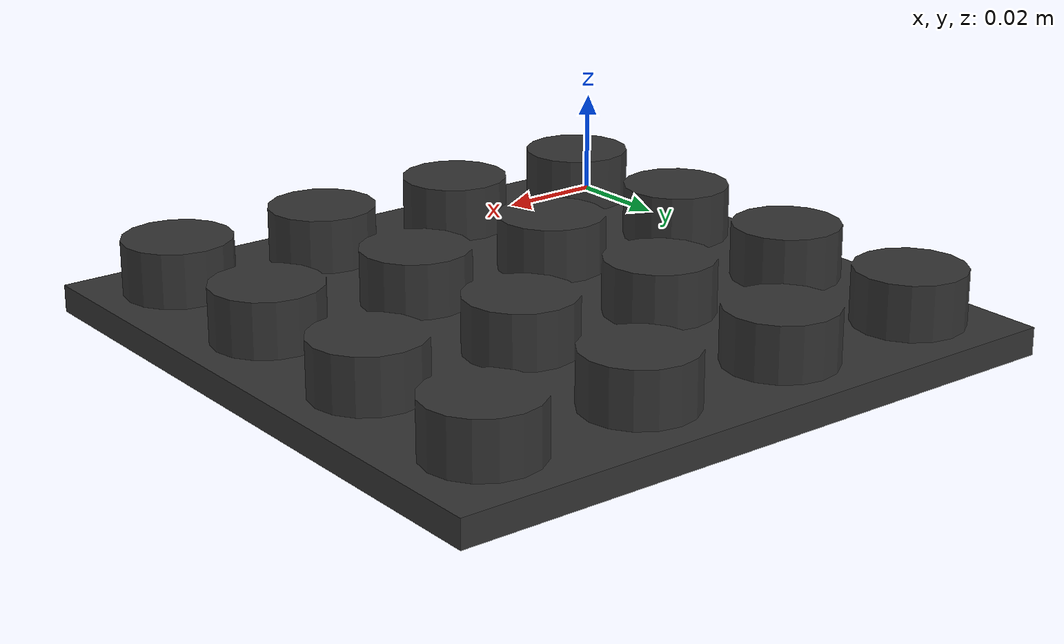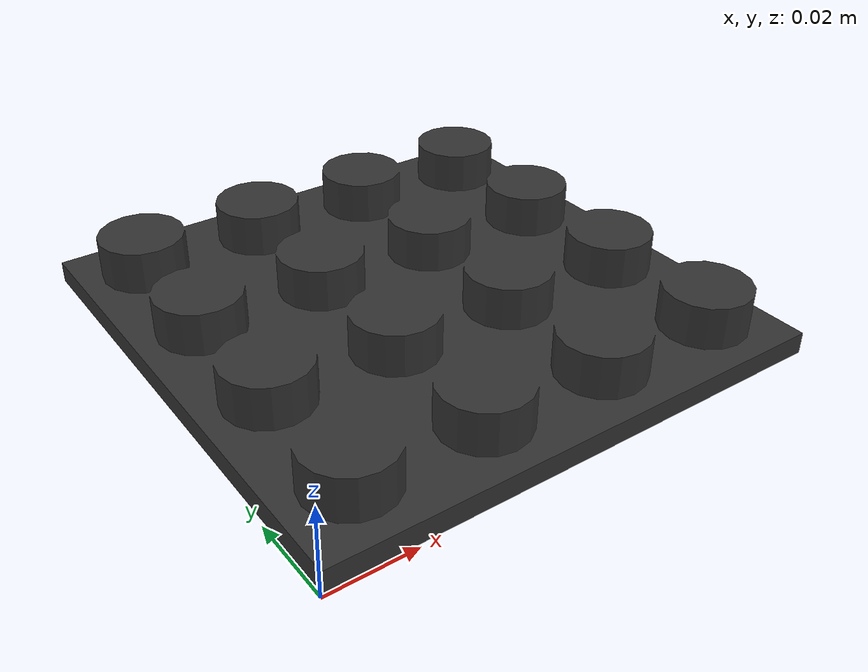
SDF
<?xml version="1.0" ?>
<sdf version="1.5">
  <model name='Base_brick'>
    <static>true</static>
    <pose>0 0 0 0 0 0</pose>

    <link name='link'>
      <inertial>
        <mass>0.1</mass>
        <inertia>
          <ixx>0.166667</ixx>
          <ixy>0</ixy>
          <ixz>0</ixz>
          <iyy>0.166667</iyy>
          <iyz>0</iyz>
          <izz>0.166667</izz>
        </inertia>
        <pose>0 0 0 0 0 0</pose>
      </inertial>

      <collision name='collision'>
        <geometry>
          <mesh>
            <uri>model://Base_brick/base_brick.STL</uri>
            <scale>0.001 0.001 0.001</scale>
          </mesh>
        </geometry>
        <surface>
          <contact>
            <ode/>
          </contact>
          <bounce/>
          <friction>
            <torsional>
              <ode/>
            </torsional>
            <ode/>
          </friction>
        </surface>
        <max_contacts>10</max_contacts>
      </collision>

      <visual name='Base_brick_visual'>
        <geometry>
          <mesh>
            <uri>model://Base_brick/base_brick.STL</uri>
            <scale>0.001 0.001 0.001</scale>
          </mesh>
        </geometry>

        <material>
          <ambient>0.2 0.2 0.2 1.0</ambient>
          <diffuse>0.2 0.2 0.2 1.0</diffuse>
          <specular>0.5 0.5 0.5 1.0</specular>
        </material>

      </visual> <self_collide>0</self_collide>
      <enable_wind>0</enable_wind>
      <kinematic>0</kinematic>
    </link>
  </model>
</sdf>
